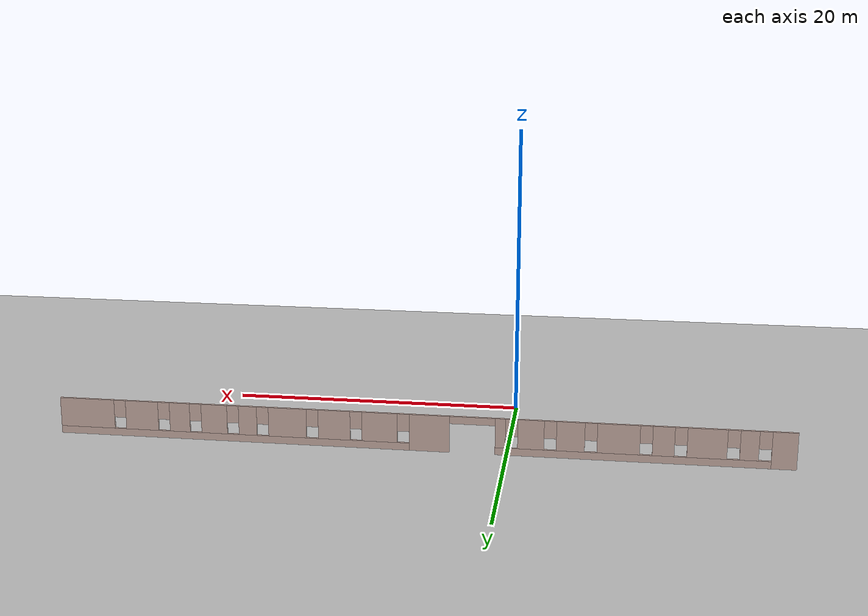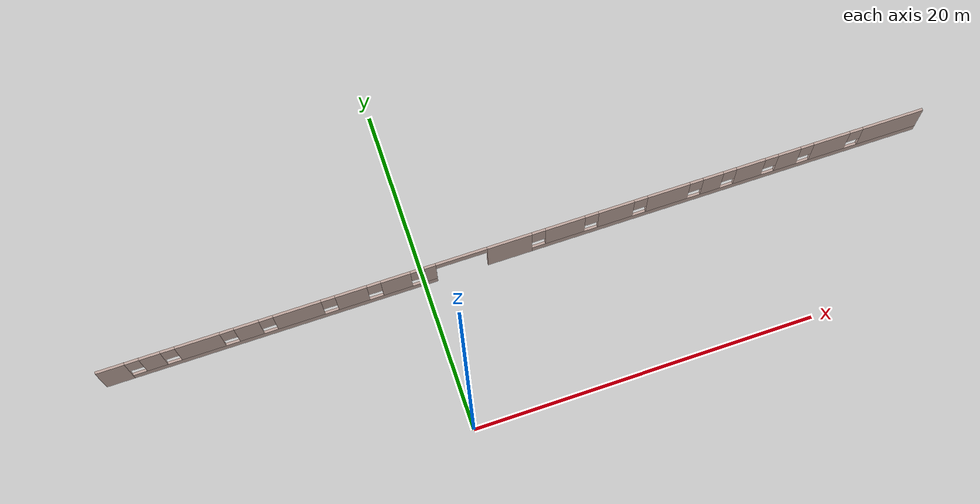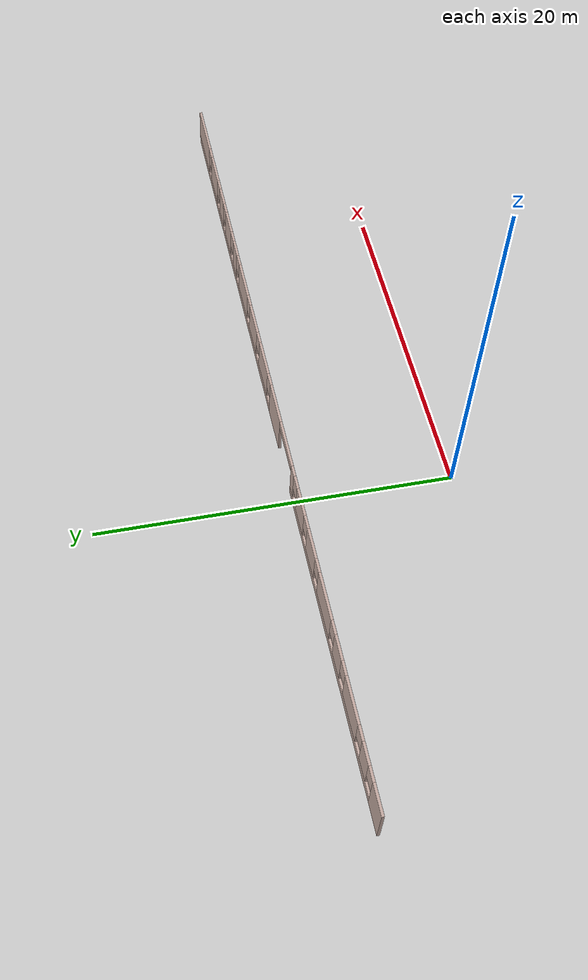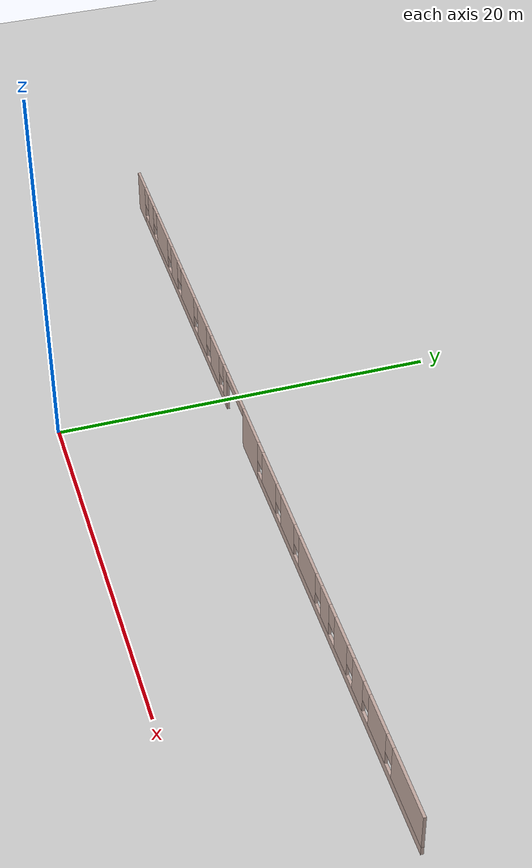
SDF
<sdf version="1.6">
 <world name="default">
  <model name="ground_plane">
   <static>1</static>
   <link name="link">
    <collision name="collision">
     <geometry><plane><normal>0 0 1</normal><size>100 100</size></plane></geometry>
     <surface><friction><ode><mu>100</mu><mu2>50</mu2></ode></friction></surface>
    </collision>
    <visual name="visual">
     <cast_shadows>0</cast_shadows>
     <geometry><plane><normal>0 0 1</normal><size>100 100</size></plane></geometry>
     <material>
      <script><uri>file://media/materials/scripts/gazebo.material</uri><name>Gazebo/Grey</name></script>
     </material>
    </visual>
   </link>
  </model>
  <model name="FloorPlan">
   <pose>0.30947 -3.19534 0 0 -0 0</pose>
   <link name="Wall_0">
    <pose>5.59242 12.1499 0 0 -0 7e-06</pose>
    <visual name="Wall_0_Visual_0">
     <pose>-23.5744 0 1.25 0 -0 0</pose>
     <geometry><box><size>1.60129 0.15 2.5</size></box></geometry>
     <material>
      <script><uri>file://media/materials/scripts/gazebo.material</uri><name>Gazebo/Grey</name></script>
      <ambient>0.760784 0.662745 0.627451 1</ambient>
     </material>
     <meta><layer>0</layer></meta>
    </visual>
    <collision name="Wall_0_Collision_0">
     <geometry><box><size>1.60129 0.15 2.5</size></box></geometry>
     <pose>-23.5744 0 1.25 0 -0 0</pose>
    </collision>
    <visual name="Wall_0_Visual_1">
     <pose>-0.824166 0 1.25 0 -0 0</pose>
     <geometry><box><size>2.64767 0.15 2.5</size></box></geometry>
     <material>
      <script><uri>file://media/materials/scripts/gazebo.material</uri><name>Gazebo/Grey</name></script>
      <ambient>0.760784 0.662745 0.627451 1</ambient>
     </material>
     <meta><layer>0</layer></meta>
    </visual>
    <collision name="Wall_0_Collision_1">
     <geometry><box><size>2.64767 0.15 2.5</size></box></geometry>
     <pose>-0.824166 0 1.25 0 -0 0</pose>
    </collision>
    <visual name="Wall_0_Visual_2">
     <pose>-13.9609 0 0.25 0 -0 0</pose>
     <geometry><box><size>17.6257 0.15 0.5</size></box></geometry>
     <material>
      <script><uri>file://media/materials/scripts/gazebo.material</uri><name>Gazebo/Grey</name></script>
      <ambient>0.760784 0.662745 0.627451 1</ambient>
     </material>
     <meta><layer>0</layer></meta>
    </visual>
    <collision name="Wall_0_Collision_2">
     <geometry><box><size>17.6257 0.15 0.5</size></box></geometry>
     <pose>-13.9609 0 0.25 0 -0 0</pose>
    </collision>
    <visual name="Wall_0_Visual_3">
     <pose>12.4373 0 0.25 0 -0 0</pose>
     <geometry><box><size>23.8753 0.15 0.5</size></box></geometry>
     <material>
      <script><uri>file://media/materials/scripts/gazebo.material</uri><name>Gazebo/Grey</name></script>
      <ambient>0.760784 0.662745 0.627451 1</ambient>
     </material>
     <meta><layer>0</layer></meta>
    </visual>
    <collision name="Wall_0_Collision_3">
     <geometry><box><size>23.8753 0.15 0.5</size></box></geometry>
     <pose>12.4373 0 0.25 0 -0 0</pose>
    </collision>
    <visual name="Wall_0_Visual_4">
     <pose>-21.3839 0 1.5 0 -0 0</pose>
     <geometry><box><size>1.17957 0.15 2</size></box></geometry>
     <material>
      <script><uri>file://media/materials/scripts/gazebo.material</uri><name>Gazebo/Grey</name></script>
      <ambient>0.760784 0.662745 0.627451 1</ambient>
     </material>
     <meta><layer>0</layer></meta>
    </visual>
    <collision name="Wall_0_Collision_4">
     <geometry><box><size>1.17957 0.15 2</size></box></geometry>
     <pose>-21.3839 0 1.5 0 -0 0</pose>
    </collision>
    <visual name="Wall_0_Visual_5">
     <pose>-18.7356 0 1.5 0 -0 0</pose>
     <geometry><box><size>2.51713 0.15 2</size></box></geometry>
     <material>
      <script><uri>file://media/materials/scripts/gazebo.material</uri><name>Gazebo/Grey</name></script>
      <ambient>0.760784 0.662745 0.627451 1</ambient>
     </material>
     <meta><layer>0</layer></meta>
    </visual>
    <collision name="Wall_0_Collision_5">
     <geometry><box><size>2.51713 0.15 2</size></box></geometry>
     <pose>-18.7356 0 1.5 0 -0 0</pose>
    </collision>
    <visual name="Wall_0_Visual_6">
     <pose>-15.9802 0 1.5 0 -0 0</pose>
     <geometry><box><size>1.39358 0.15 2</size></box></geometry>
     <material>
      <script><uri>file://media/materials/scripts/gazebo.material</uri><name>Gazebo/Grey</name></script>
      <ambient>0.760784 0.662745 0.627451 1</ambient>
     </material>
     <meta><layer>0</layer></meta>
    </visual>
    <collision name="Wall_0_Collision_6">
     <geometry><box><size>1.39358 0.15 2</size></box></geometry>
     <pose>-15.9802 0 1.5 0 -0 0</pose>
    </collision>
    <visual name="Wall_0_Visual_7">
     <pose>-13.1179 0 1.5 0 -0 0</pose>
     <geometry><box><size>2.73113 0.15 2</size></box></geometry>
     <material>
      <script><uri>file://media/materials/scripts/gazebo.material</uri><name>Gazebo/Grey</name></script>
      <ambient>0.760784 0.662745 0.627451 1</ambient>
     </material>
     <meta><layer>0</layer></meta>
    </visual>
    <collision name="Wall_0_Collision_7">
     <geometry><box><size>2.73113 0.15 2</size></box></geometry>
     <pose>-13.1179 0 1.5 0 -0 0</pose>
    </collision>
    <visual name="Wall_0_Visual_8">
     <pose>-10.0415 0 1.5 0 -0 0</pose>
     <geometry><box><size>1.8216 0.15 2</size></box></geometry>
     <material>
      <script><uri>file://media/materials/scripts/gazebo.material</uri><name>Gazebo/Grey</name></script>
      <ambient>0.760784 0.662745 0.627451 1</ambient>
     </material>
     <meta><layer>0</layer></meta>
    </visual>
    <collision name="Wall_0_Collision_8">
     <geometry><box><size>1.8216 0.15 2</size></box></geometry>
     <pose>-10.0415 0 1.5 0 -0 0</pose>
    </collision>
    <visual name="Wall_0_Visual_9">
     <pose>-7.4734 0 1.5 0 -0 0</pose>
     <geometry><box><size>1.7146 0.15 2</size></box></geometry>
     <material>
      <script><uri>file://media/materials/scripts/gazebo.material</uri><name>Gazebo/Grey</name></script>
      <ambient>0.760784 0.662745 0.627451 1</ambient>
     </material>
     <meta><layer>0</layer></meta>
    </visual>
    <collision name="Wall_0_Collision_9">
     <geometry><box><size>1.7146 0.15 2</size></box></geometry>
     <pose>-7.4734 0 1.5 0 -0 0</pose>
    </collision>
    <visual name="Wall_0_Visual_10">
     <pose>-5.48205 0 1.5 0 -0 0</pose>
     <geometry><box><size>0.668097 0.15 2</size></box></geometry>
     <material>
      <script><uri>file://media/materials/scripts/gazebo.material</uri><name>Gazebo/Grey</name></script>
      <ambient>0.760784 0.662745 0.627451 1</ambient>
     </material>
     <meta><layer>0</layer></meta>
    </visual>
    <collision name="Wall_0_Collision_10">
     <geometry><box><size>0.668097 0.15 2</size></box></geometry>
     <pose>-5.48205 0 1.5 0 -0 0</pose>
    </collision>
    <visual name="Wall_0_Visual_11">
     <pose>-5.48205 0 1.5 0 -0 0</pose>
     <geometry><box><size>0.668097 0.15 2</size></box></geometry>
     <material>
      <script><uri>file://media/materials/scripts/gazebo.material</uri><name>Gazebo/Grey</name></script>
      <ambient>0.760784 0.662745 0.627451 1</ambient>
     </material>
     <meta><layer>0</layer></meta>
    </visual>
    <collision name="Wall_0_Collision_11">
     <geometry><box><size>0.668097 0.15 2</size></box></geometry>
     <pose>-5.48205 0 1.5 0 -0 0</pose>
    </collision>
    <visual name="Wall_0_Visual_12">
     <pose>2.47798 0 1.5 0 -0 0</pose>
     <geometry><box><size>2.35662 0.15 2</size></box></geometry>
     <material>
      <script><uri>file://media/materials/scripts/gazebo.material</uri><name>Gazebo/Grey</name></script>
      <ambient>0.760784 0.662745 0.627451 1</ambient>
     </material>
     <meta><layer>0</layer></meta>
    </visual>
    <collision name="Wall_0_Collision_12">
     <geometry><box><size>2.35662 0.15 2</size></box></geometry>
     <pose>2.47798 0 1.5 0 -0 0</pose>
    </collision>
    <visual name="Wall_0_Visual_13">
     <pose>5.5276 0 1.5 0 -0 0</pose>
     <geometry><box><size>2.14261 0.15 2</size></box></geometry>
     <material>
      <script><uri>file://media/materials/scripts/gazebo.material</uri><name>Gazebo/Grey</name></script>
      <ambient>0.760784 0.662745 0.627451 1</ambient>
     </material>
     <meta><layer>0</layer></meta>
    </visual>
    <collision name="Wall_0_Collision_13">
     <geometry><box><size>2.14261 0.15 2</size></box></geometry>
     <pose>5.5276 0 1.5 0 -0 0</pose>
    </collision>
    <visual name="Wall_0_Visual_14">
     <pose>8.68422 0 1.5 0 -0 0</pose>
     <geometry><box><size>2.57063 0.15 2</size></box></geometry>
     <material>
      <script><uri>file://media/materials/scripts/gazebo.material</uri><name>Gazebo/Grey</name></script>
      <ambient>0.760784 0.662745 0.627451 1</ambient>
     </material>
     <meta><layer>0</layer></meta>
    </visual>
    <collision name="Wall_0_Collision_14">
     <geometry><box><size>2.57063 0.15 2</size></box></geometry>
     <pose>8.68422 0 1.5 0 -0 0</pose>
    </collision>
    <visual name="Wall_0_Visual_15">
     <pose>11.3861 0 1.5 0 -0 0</pose>
     <geometry><box><size>1.23308 0.15 2</size></box></geometry>
     <material>
      <script><uri>file://media/materials/scripts/gazebo.material</uri><name>Gazebo/Grey</name></script>
      <ambient>0.760784 0.662745 0.627451 1</ambient>
     </material>
     <meta><layer>0</layer></meta>
    </visual>
    <collision name="Wall_0_Collision_15">
     <geometry><box><size>1.23308 0.15 2</size></box></geometry>
     <pose>11.3861 0 1.5 0 -0 0</pose>
    </collision>
    <visual name="Wall_0_Visual_16">
     <pose>13.6867 0 1.5 0 -0 0</pose>
     <geometry><box><size>1.7681 0.15 2</size></box></geometry>
     <material>
      <script><uri>file://media/materials/scripts/gazebo.material</uri><name>Gazebo/Grey</name></script>
      <ambient>0.760784 0.662745 0.627451 1</ambient>
     </material>
     <meta><layer>0</layer></meta>
    </visual>
    <collision name="Wall_0_Collision_16">
     <geometry><box><size>1.7681 0.15 2</size></box></geometry>
     <pose>13.6867 0 1.5 0 -0 0</pose>
    </collision>
    <visual name="Wall_0_Visual_17">
     <pose>16.0675 0 1.5 0 -0 0</pose>
     <geometry><box><size>1.39358 0.15 2</size></box></geometry>
     <material>
      <script><uri>file://media/materials/scripts/gazebo.material</uri><name>Gazebo/Grey</name></script>
      <ambient>0.760784 0.662745 0.627451 1</ambient>
     </material>
     <meta><layer>0</layer></meta>
    </visual>
    <collision name="Wall_0_Collision_17">
     <geometry><box><size>1.39358 0.15 2</size></box></geometry>
     <pose>16.0675 0 1.5 0 -0 0</pose>
    </collision>
    <visual name="Wall_0_Visual_18">
     <pose>18.6891 0 1.5 0 -0 0</pose>
     <geometry><box><size>2.24962 0.15 2</size></box></geometry>
     <material>
      <script><uri>file://media/materials/scripts/gazebo.material</uri><name>Gazebo/Grey</name></script>
      <ambient>0.760784 0.662745 0.627451 1</ambient>
     </material>
     <meta><layer>0</layer></meta>
    </visual>
    <collision name="Wall_0_Collision_18">
     <geometry><box><size>2.24962 0.15 2</size></box></geometry>
     <pose>18.6891 0 1.5 0 -0 0</pose>
    </collision>
    <visual name="Wall_0_Visual_19">
     <pose>22.4945 0 1.5 0 -0 0</pose>
     <geometry><box><size>3.7611 0.15 2</size></box></geometry>
     <material>
      <script><uri>file://media/materials/scripts/gazebo.material</uri><name>Gazebo/Grey</name></script>
      <ambient>0.760784 0.662745 0.627451 1</ambient>
     </material>
     <meta><layer>0</layer></meta>
    </visual>
    <collision name="Wall_0_Collision_19">
     <geometry><box><size>3.7611 0.15 2</size></box></geometry>
     <pose>22.4945 0 1.5 0 -0 0</pose>
    </collision>
    <visual name="Wall_0_Visual_20">
     <pose>-22.3737 0 1.9 0 -0 0</pose>
     <geometry><box><size>0.8 0.15 1.2</size></box></geometry>
     <material>
      <script><uri>file://media/materials/scripts/gazebo.material</uri><name>Gazebo/Grey</name></script>
      <ambient>0.760784 0.662745 0.627451 1</ambient>
     </material>
     <meta><layer>0</layer></meta>
    </visual>
    <collision name="Wall_0_Collision_20">
     <geometry><box><size>0.8 0.15 1.2</size></box></geometry>
     <pose>-22.3737 0 1.9 0 -0 0</pose>
    </collision>
    <visual name="Wall_0_Visual_21">
     <pose>0.89967 0 1.9 0 -0 0</pose>
     <geometry><box><size>0.8 0.15 1.2</size></box></geometry>
     <material>
      <script><uri>file://media/materials/scripts/gazebo.material</uri><name>Gazebo/Grey</name></script>
      <ambient>0.760784 0.662745 0.627451 1</ambient>
     </material>
     <meta><layer>0</layer></meta>
    </visual>
    <collision name="Wall_0_Collision_21">
     <geometry><box><size>0.8 0.15 1.2</size></box></geometry>
     <pose>0.89967 0 1.9 0 -0 0</pose>
    </collision>
    <visual name="Wall_0_Visual_22">
     <pose>-20.3941 0 1.9 0 -0 0</pose>
     <geometry><box><size>0.8 0.15 1.2</size></box></geometry>
     <material>
      <script><uri>file://media/materials/scripts/gazebo.material</uri><name>Gazebo/Grey</name></script>
      <ambient>0.760784 0.662745 0.627451 1</ambient>
     </material>
     <meta><layer>0</layer></meta>
    </visual>
    <collision name="Wall_0_Collision_22">
     <geometry><box><size>0.8 0.15 1.2</size></box></geometry>
     <pose>-20.3941 0 1.9 0 -0 0</pose>
    </collision>
    <visual name="Wall_0_Visual_23">
     <pose>-17.077 0 1.9 0 -0 0</pose>
     <geometry><box><size>0.8 0.15 1.2</size></box></geometry>
     <material>
      <script><uri>file://media/materials/scripts/gazebo.material</uri><name>Gazebo/Grey</name></script>
      <ambient>0.760784 0.662745 0.627451 1</ambient>
     </material>
     <meta><layer>0</layer></meta>
    </visual>
    <collision name="Wall_0_Collision_23">
     <geometry><box><size>0.8 0.15 1.2</size></box></geometry>
     <pose>-17.077 0 1.9 0 -0 0</pose>
    </collision>
    <visual name="Wall_0_Visual_24">
     <pose>-14.8834 0 1.9 0 -0 0</pose>
     <geometry><box><size>0.8 0.15 1.2</size></box></geometry>
     <material>
      <script><uri>file://media/materials/scripts/gazebo.material</uri><name>Gazebo/Grey</name></script>
      <ambient>0.760784 0.662745 0.627451 1</ambient>
     </material>
     <meta><layer>0</layer></meta>
    </visual>
    <collision name="Wall_0_Collision_24">
     <geometry><box><size>0.8 0.15 1.2</size></box></geometry>
     <pose>-14.8834 0 1.9 0 -0 0</pose>
    </collision>
    <visual name="Wall_0_Visual_25">
     <pose>-11.3523 0 1.9 0 -0 0</pose>
     <geometry><box><size>0.8 0.15 1.2</size></box></geometry>
     <material>
      <script><uri>file://media/materials/scripts/gazebo.material</uri><name>Gazebo/Grey</name></script>
      <ambient>0.760784 0.662745 0.627451 1</ambient>
     </material>
     <meta><layer>0</layer></meta>
    </visual>
    <collision name="Wall_0_Collision_25">
     <geometry><box><size>0.8 0.15 1.2</size></box></geometry>
     <pose>-11.3523 0 1.9 0 -0 0</pose>
    </collision>
    <visual name="Wall_0_Visual_26">
     <pose>-8.7307 0 1.9 0 -0 0</pose>
     <geometry><box><size>0.8 0.15 1.2</size></box></geometry>
     <material>
      <script><uri>file://media/materials/scripts/gazebo.material</uri><name>Gazebo/Grey</name></script>
      <ambient>0.760784 0.662745 0.627451 1</ambient>
     </material>
     <meta><layer>0</layer></meta>
    </visual>
    <collision name="Wall_0_Collision_26">
     <geometry><box><size>0.8 0.15 1.2</size></box></geometry>
     <pose>-8.7307 0 1.9 0 -0 0</pose>
    </collision>
    <visual name="Wall_0_Visual_27">
     <pose>-6.2161 0 1.9 0 -0 0</pose>
     <geometry><box><size>0.8 0.15 1.2</size></box></geometry>
     <material>
      <script><uri>file://media/materials/scripts/gazebo.material</uri><name>Gazebo/Grey</name></script>
      <ambient>0.760784 0.662745 0.627451 1</ambient>
     </material>
     <meta><layer>0</layer></meta>
    </visual>
    <collision name="Wall_0_Collision_27">
     <geometry><box><size>0.8 0.15 1.2</size></box></geometry>
     <pose>-6.2161 0 1.9 0 -0 0</pose>
    </collision>
    <visual name="Wall_0_Visual_28">
     <pose>4.05629 0 1.9 0 -0 0</pose>
     <geometry><box><size>0.8 0.15 1.2</size></box></geometry>
     <material>
      <script><uri>file://media/materials/scripts/gazebo.material</uri><name>Gazebo/Grey</name></script>
      <ambient>0.760784 0.662745 0.627451 1</ambient>
     </material>
     <meta><layer>0</layer></meta>
    </visual>
    <collision name="Wall_0_Collision_28">
     <geometry><box><size>0.8 0.15 1.2</size></box></geometry>
     <pose>4.05629 0 1.9 0 -0 0</pose>
    </collision>
    <visual name="Wall_0_Visual_29">
     <pose>6.9989 0 1.9 0 -0 0</pose>
     <geometry><box><size>0.8 0.15 1.2</size></box></geometry>
     <material>
      <script><uri>file://media/materials/scripts/gazebo.material</uri><name>Gazebo/Grey</name></script>
      <ambient>0.760784 0.662745 0.627451 1</ambient>
     </material>
     <meta><layer>0</layer></meta>
    </visual>
    <collision name="Wall_0_Collision_29">
     <geometry><box><size>0.8 0.15 1.2</size></box></geometry>
     <pose>6.9989 0 1.9 0 -0 0</pose>
    </collision>
    <visual name="Wall_0_Visual_30">
     <pose>10.3695 0 1.9 0 -0 0</pose>
     <geometry><box><size>0.8 0.15 1.2</size></box></geometry>
     <material>
      <script><uri>file://media/materials/scripts/gazebo.material</uri><name>Gazebo/Grey</name></script>
      <ambient>0.760784 0.662745 0.627451 1</ambient>
     </material>
     <meta><layer>0</layer></meta>
    </visual>
    <collision name="Wall_0_Collision_30">
     <geometry><box><size>0.8 0.15 1.2</size></box></geometry>
     <pose>10.3695 0 1.9 0 -0 0</pose>
    </collision>
    <visual name="Wall_0_Visual_31">
     <pose>12.4026 0 1.9 0 -0 0</pose>
     <geometry><box><size>0.8 0.15 1.2</size></box></geometry>
     <material>
      <script><uri>file://media/materials/scripts/gazebo.material</uri><name>Gazebo/Grey</name></script>
      <ambient>0.760784 0.662745 0.627451 1</ambient>
     </material>
     <meta><layer>0</layer></meta>
    </visual>
    <collision name="Wall_0_Collision_31">
     <geometry><box><size>0.8 0.15 1.2</size></box></geometry>
     <pose>12.4026 0 1.9 0 -0 0</pose>
    </collision>
    <visual name="Wall_0_Visual_32">
     <pose>14.9707 0 1.9 0 -0 0</pose>
     <geometry><box><size>0.8 0.15 1.2</size></box></geometry>
     <material>
      <script><uri>file://media/materials/scripts/gazebo.material</uri><name>Gazebo/Grey</name></script>
      <ambient>0.760784 0.662745 0.627451 1</ambient>
     </material>
     <meta><layer>0</layer></meta>
    </visual>
    <collision name="Wall_0_Collision_32">
     <geometry><box><size>0.8 0.15 1.2</size></box></geometry>
     <pose>14.9707 0 1.9 0 -0 0</pose>
    </collision>
    <visual name="Wall_0_Visual_33">
     <pose>17.1643 0 1.9 0 -0 0</pose>
     <geometry><box><size>0.8 0.15 1.2</size></box></geometry>
     <material>
      <script><uri>file://media/materials/scripts/gazebo.material</uri><name>Gazebo/Grey</name></script>
      <ambient>0.760784 0.662745 0.627451 1</ambient>
     </material>
     <meta><layer>0</layer></meta>
    </visual>
    <collision name="Wall_0_Collision_33">
     <geometry><box><size>0.8 0.15 1.2</size></box></geometry>
     <pose>17.1643 0 1.9 0 -0 0</pose>
    </collision>
    <visual name="Wall_0_Visual_34">
     <pose>20.2139 0 1.9 0 -0 0</pose>
     <geometry><box><size>0.8 0.15 1.2</size></box></geometry>
     <material>
      <script><uri>file://media/materials/scripts/gazebo.material</uri><name>Gazebo/Grey</name></script>
      <ambient>0.760784 0.662745 0.627451 1</ambient>
     </material>
     <meta><layer>0</layer></meta>
    </visual>
    <collision name="Wall_0_Collision_34">
     <geometry><box><size>0.8 0.15 1.2</size></box></geometry>
     <pose>20.2139 0 1.9 0 -0 0</pose>
    </collision>
    <visual name="Wall_0_Visual_35">
     <pose>-3.648 0 2.25 0 -0 0</pose>
     <geometry><box><size>3 0.15 0.5</size></box></geometry>
     <material>
      <script><uri>file://media/materials/scripts/gazebo.material</uri><name>Gazebo/Grey</name></script>
      <ambient>0.760784 0.662745 0.627451 1</ambient>
     </material>
     <meta><layer>0</layer></meta>
    </visual>
    <collision name="Wall_0_Collision_35">
     <geometry><box><size>3 0.15 0.5</size></box></geometry>
     <pose>-3.648 0 2.25 0 -0 0</pose>
    </collision>
    <visual name="Wall_0_Visual_36">
     <pose>-3.648 0 2.25 0 -0 0</pose>
     <geometry><box><size>3 0.15 0.5</size></box></geometry>
     <material>
      <script><uri>file://media/materials/scripts/gazebo.material</uri><name>Gazebo/Grey</name></script>
      <ambient>0.760784 0.662745 0.627451 1</ambient>
     </material>
     <meta><layer>0</layer></meta>
    </visual>
    <collision name="Wall_0_Collision_36">
     <geometry><box><size>3 0.15 0.5</size></box></geometry>
     <pose>-3.648 0 2.25 0 -0 0</pose>
    </collision>
   </link>
   <static>1</static>
  </model>
 </world>
</sdf>
